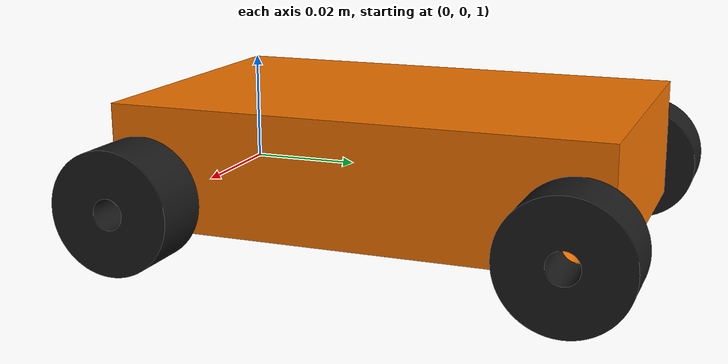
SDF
<?xml version="1.0" ?>

<sdf version="1.11">

<world name="default">

  <physics name="1ms" type="ignored">
    <max_step_size>0.001</max_step_size>
    <real_time_factor>1.0</real_time_factor>
  </physics>

  <!-- Luz -->
  <light type="directional" name="sun">
    <cast_shadows>true</cast_shadows>
    <pose>0 0 10 0 0 0</pose>

    <diffuse>0.8 0.8 0.8 1</diffuse>
    <specular>0.2 0.2 0.2 1</specular>

    <direction>-0.5 0.1 -0.9</direction>
  </light>

  <!-- CHÃO -->
  <model name="ground_plane">
    <static>true</static>

    <link name="link">

      <collision name="collision">
        <geometry>
          <plane>
            <normal>0 0 1</normal>
            <size>100 100</size>
          </plane>
        </geometry>
      </collision>

      <visual name="visual">
        <geometry>
          <plane>
            <normal>0 0 1</normal>
            <size>100 100</size>
          </plane>
        </geometry>

      </visual>

    </link>
  </model>

  <!-- SEU DRONE -->

  <include>
    <uri>
      file://../modelo_carrinho/modelo_carrinho.sdf
    </uri>

    <pose>0 0 1 0 0 0</pose>

  </include>
  <physics type="ode">

    <max_step_size>0.001</max_step_size>

    <real_time_factor>1.0</real_time_factor>

    <real_time_update_rate>1000</real_time_update_rate>

    </physics>

</world>

</sdf>

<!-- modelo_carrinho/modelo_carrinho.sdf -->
<sdf version='1.11'>
  <model name='modelo_carrinho'>
    <link name='base_link'>
      <inertial>
        <pose>0.025000000000000001 0.040000000000000001 0.010125806212033369 0 0 0</pose>
        <mass>0.050</mass>
        <inertia>
          <ixx>0.00033654200544526382</ixx>
          <ixy>1.084202172485504e-19</ixy>
          <ixz>2.7105054312137611e-20</ixz>
          <iyy>0.000148136418544962</iyy>
          <iyz>0</iyz>
          <izz>0.00044364998733501968</izz>
        </inertia>
      </inertial>
      <collision name='base_link_collision_collision'>
        <pose>0 0 0 0 0 0</pose>
        <geometry>
          <mesh>
            <scale>0.001 0.001 0.001</scale>
            <uri>meshes/base_link.stl</uri>
          </mesh>
        </geometry>
      </collision>
      <visual name='base_link_visual_visual'>
        <pose>0 0 0 0 0 0</pose>
        <geometry>
          <mesh>
            <scale>0.001 0.001 0.001</scale>
            <uri>meshes/base_link.stl</uri>
          </mesh>
        </geometry>
        <material>
          <ambient>0.4 0.2 0 1</ambient>
          <diffuse>0.95 0.45 0 1</diffuse>
          <specular>0.3 0.3 0.3 1</specular>
        </material>
      </visual>
    </link>
    <joint name='base_link_junta_frent_dir' type='revolute'>
      <pose relative_to='base_link'>0.050000000000000003 0.074999999999999997 0.0050000000000000001 0 -1.5707963267948966 0</pose>
      <parent>base_link</parent>
      <child>roda_frent_dir</child>
      <axis>
        <xyz>0 0 1</xyz>
        <limit>
          <lower>-inf</lower>
          <upper>inf</upper>
          <effort>20</effort>
          <velocity>2.0</velocity>
        </limit>
        <dynamics>
          <spring_reference>0</spring_reference>
          <spring_stiffness>0</spring_stiffness>
          <damping>0.10</damping>
          <friction>0.0</friction>
        </dynamics>
      </axis>
    </joint>
    <link name='roda_frent_dir'>
      <pose relative_to='base_link_junta_frent_dir'>0 0 0 0 0 0</pose>
      <inertial>
        <pose>-1.7426060594516461e-14 -1.7763568394002511e-17 -0.0050000000000000001 0 0 0</pose>
        <mass>0.02312015843501232</mass>
        <inertia>
          <ixx>8.0679719585504306e-07</ixx>
          <ixy>-1.863472483959461e-20</ixy>
          <ixz>-8.4703294725430034e-22</ixz>
          <iyy>8.0679719523295496e-07</iyy>
          <iyz>0</iyz>
          <izz>1.228258417171135e-06</izz>
        </inertia>
      </inertial>
      <collision name='roda_frent_dir_collision_collision'>
        <pose>-0.059999999999999998 -0.10000000000000001 -0.01 0 0 0</pose>
        <geometry>
          <mesh>
            <scale>0.001 0.001 0.001</scale>
            <uri>meshes/roda_frent_dir.stl</uri>
          </mesh>
        </geometry>
      </collision>
      <visual name='roda_frent_dir_visual_visual'>
        <pose>-0.059999999999999998 -0.10000000000000001 -0.01 0 0 0</pose>
        <geometry>
          <mesh>
            <scale>0.001 0.001 0.001</scale>
            <uri>meshes/roda_frent_dir.stl</uri>
          </mesh>
        </geometry>
        <material>
          <ambient>0.05 0.05 0.05 1</ambient>
          <diffuse>0.1 0.1 0.1 1</diffuse>
          <specular>0.3 0.3 0.3 1</specular>
        </material>
      </visual>
    </link>
    <joint name='base_link_junta_frent_esq' type='revolute'>
      <pose relative_to='base_link'>0 0.074999999999999997 0.0050000000000000001 -3.1415926535897931 -1.5707963267948966 0</pose>
      <parent>base_link</parent>
      <child>roda_frent_esq</child>
      <axis>
        <xyz>0 0 -1</xyz>
        <limit>
          <lower>-inf</lower>
          <upper>inf</upper>
          <effort>20</effort>
          <velocity>2.0</velocity>
        </limit>
        <dynamics>
          <spring_reference>0</spring_reference>
          <spring_stiffness>0</spring_stiffness>
          <damping>0.10</damping>
          <friction>0.0</friction>
        </dynamics>
      </axis>
    </joint>
    <link name='roda_frent_esq'>
      <pose relative_to='base_link_junta_frent_esq'>0 0 0 0 0 0</pose>
      <inertial>
        <pose>-1.7430501486614961e-14 0 -0.0050000000000000001 0 0 0</pose>
        <mass>0.02312015843501232</mass>
        <inertia>
          <ixx>8.0679719585496175e-07</ixx>
          <ixy>-1.01643953670516e-20</ixy>
          <ixz>-3.1763735522036258e-22</ixz>
          <iyy>8.0679719523294924e-07</iyy>
          <iyz>0</iyz>
          <izz>1.2282584171710259e-06</izz>
        </inertia>
      </inertial>
      <collision name='roda_frent_esq_collision_collision'>
        <pose>-0.029999999999999999 -0.13 -0.01 0 0 0</pose>
        <geometry>
          <mesh>
            <scale>0.001 0.001 0.001</scale>
            <uri>meshes/roda_frent_esq.stl</uri>
          </mesh>
        </geometry>
      </collision>
      <visual name='roda_frent_esq_visual_visual'>
        <pose>-0.029999999999999999 -0.13 -0.01 0 0 0</pose>
        <geometry>
          <mesh>
            <scale>0.001 0.001 0.001</scale>
            <uri>meshes/roda_frent_esq.stl</uri>
          </mesh>
        </geometry>
        <material>
          <ambient>0.05 0.05 0.05 1</ambient>
          <diffuse>0.1 0.1 0.1 1</diffuse>
          <specular>0.3 0.3 0.3 1</specular>
        </material>
      </visual>
    </link>
    <joint name='base_link_junta_traz_dir' type='revolute'>
      <pose relative_to='base_link'>0.050000000000000003 0.0050000000000000001 0.0050000000000000001 0 -1.5707963267948966 0</pose>
      <parent>base_link</parent>
      <child>roda_traz_dir</child>
      <axis>
        <xyz>0 0 1</xyz>
        <limit>
          <lower>-inf</lower>
          <upper>inf</upper>
          <effort>20</effort>
          <velocity>2.0</velocity>
        </limit>
        <dynamics>
          <spring_reference>0</spring_reference>
          <spring_stiffness>0</spring_stiffness>
          <damping>0.10</damping>
          <friction>0.0</friction>
        </dynamics>
      </axis>
    </joint>
    <link name='roda_traz_dir'>
      <pose relative_to='base_link_junta_traz_dir'>0 0 0 0 0 0</pose>
      <inertial>
        <pose>-1.7426060594516461e-14 0 -0.0050000000000000001 0 0 0</pose>
        <mass>0.02312015843501232</mass>
        <inertia>
          <ixx>8.0679719585494819e-07</ixx>
          <ixy>7.7291756436954906e-21</ixy>
          <ixz>-8.4703294725430034e-22</ixz>
          <iyy>8.0679719523295496e-07</iyy>
          <iyz>8.4703294725430034e-22</iyz>
          <izz>1.228258417171075e-06</izz>
        </inertia>
      </inertial>
      <collision name='roda_traz_dir_collision_collision'>
        <pose>-0.059999999999999998 -0.13 -0.01 0 0 0</pose>
        <geometry>
          <mesh>
            <scale>0.001 0.001 0.001</scale>
            <uri>meshes/roda_traz_dir.stl</uri>
          </mesh>
        </geometry>
      </collision>
      <visual name='roda_traz_dir_visual_visual'>
        <pose>-0.059999999999999998 -0.13 -0.01 0 0 0</pose>
        <geometry>
          <mesh>
            <scale>0.001 0.001 0.001</scale>
            <uri>meshes/roda_traz_dir.stl</uri>
          </mesh>
        </geometry>
        <material>
          <ambient>0.05 0.05 0.05 1</ambient>
          <diffuse>0.1 0.1 0.1 1</diffuse>
          <specular>0.3 0.3 0.3 1</specular>
        </material>
      </visual>
    </link>
    <joint name='base_link_junta_traz_esq' type='revolute'>
      <pose relative_to='base_link'>0 0.0050000000000000001 0.0050000000000000001 -3.1415926535897931 -1.5707963267948966 0</pose>
      <parent>base_link</parent>
      <child>roda_traz_esq</child>
      <axis>
        <xyz>0 0 -1</xyz>
        <limit>
          <lower>-inf</lower>
          <upper>inf</upper>
          <effort>20</effort>
          <velocity>2.0</velocity>
        </limit>
        <dynamics>
          <spring_reference>0</spring_reference>
          <spring_stiffness>0</spring_stiffness>
          <damping>0.10</damping>
          <friction>0.0</friction>
        </dynamics>
      </axis>
    </joint>
    <link name='roda_traz_esq'>
      <pose relative_to='base_link_junta_traz_esq'>0 0 0 0 0 0</pose>
      <inertial>
        <pose>-1.7430501486614961e-14 -1.7763568394002511e-17 -0.0050000000000000001 0 0 0</pose>
        <mass>0.02312015843501232</mass>
        <inertia>
          <ixx>8.0679719585505068e-07</ixx>
          <ixy>-2.0434669852509999e-20</ixy>
          <ixz>-3.1763735522036258e-22</ixz>
          <iyy>8.0679719523294924e-07</iyy>
          <iyz>-5.2939559203393771e-22</iyz>
          <izz>1.228258417171117e-06</izz>
        </inertia>
      </inertial>
      <collision name='roda_traz_esq_collision_collision'>
        <pose>-0.029999999999999999 -0.10000000000000001 -0.01 0 0 0</pose>
        <geometry>
          <mesh>
            <scale>0.001 0.001 0.001</scale>
            <uri>meshes/roda_traz_esq.stl</uri>
          </mesh>
        </geometry>
      </collision>
      <visual name='roda_traz_esq_visual_visual'>
        <pose>-0.029999999999999999 -0.10000000000000001 -0.01 0 0 0</pose>
        <geometry>
          <mesh>
            <scale>0.001 0.001 0.001</scale>
            <uri>meshes/roda_traz_esq.stl</uri>
          </mesh>
        </geometry>
        <material>
          <ambient>0.05 0.05 0.05 1</ambient>
          <diffuse>0.1 0.1 0.1 1</diffuse>
          <specular>0.3 0.3 0.3 1</specular>
        </material>
      </visual>
    </link>
    <!-- Plugins -->
    <plugin filename="gz-sim-joint-controller-system" name="gz::sim::systems::JointController">
      <joint_name>base_link_junta_frent_dir</joint_name>
      <topic>/modelo_carrinho/roda_frente_direita_cmd</topic>
    </plugin>

    <plugin filename="gz-sim-joint-controller-system" name="gz::sim::systems::JointController">
      <joint_name>base_link_junta_frent_esq</joint_name>
      <topic>/modelo_carrinho/roda_frente_esquerda_cmd</topic>
    </plugin>

    <plugin filename="gz-sim-joint-controller-system" name="gz::sim::systems::JointController">
      <joint_name>base_link_junta_traz_dir</joint_name>
      <topic>/modelo_carrinho/roda_traz_direita_cmd</topic>
    </plugin>

    <plugin filename="gz-sim-joint-controller-system" name="gz::sim::systems::JointController">
      <joint_name>base_link_junta_traz_esq</joint_name>
      <topic>/modelo_carrinho/roda_traz_esquerda_cmd</topic>
    </plugin>
  </model>
</sdf>
